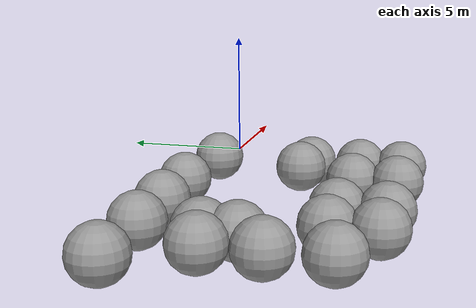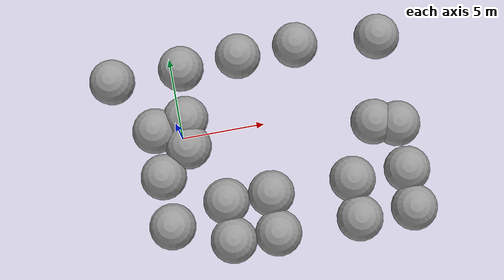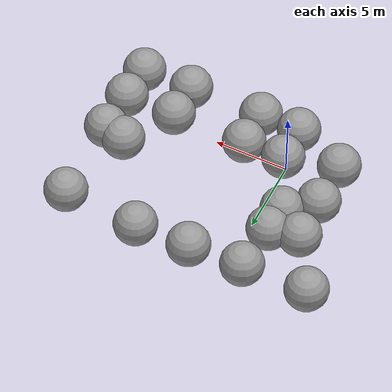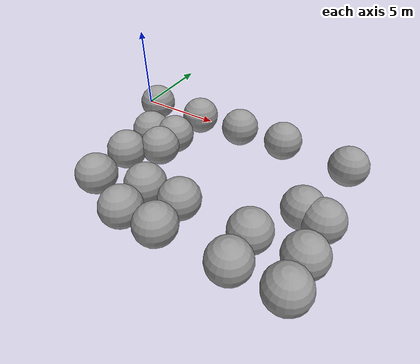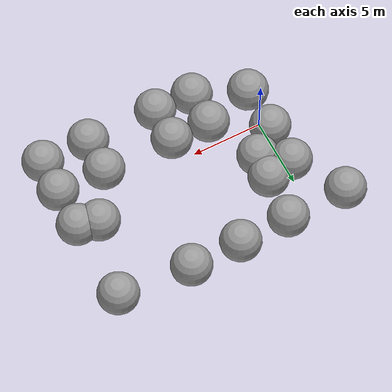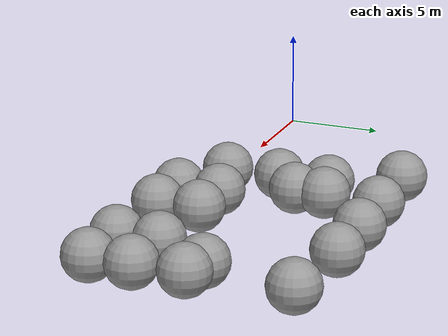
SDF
<sdf version="1.7">
 <world name="default">
  <model name="fly_spawn_18">
   <link name="link_0">
    <inertial>
     <mass>1</mass>
     <inertia><ixx>0.1</ixx><ixy>0</ixy><ixz>0</ixz><iyy>0.1</iyy><iyz>0</iyz><izz>0.1</izz></inertia>
     <pose>0 0 -2.0 0 -0 0</pose>
    </inertial>
    <visual name="visual">
     <pose>0 0 -2.0 0 -0 0</pose>
     <geometry><sphere><radius>1.5</radius></sphere></geometry>
     <material>
      <lighting>1</lighting>
      <script><uri>file://media/materials/scripts/gazebo.material</uri><name>Gazebo/Grey</name></script>
      <shader type="pixel"><normal_map>__default__</normal_map></shader>
      <ambient>0.3 0.3 0.3 1</ambient>
      <diffuse>0.7 0.7 0.7 1</diffuse>
      <specular>0.01 0.01 0.01 1</specular>
      <emissive>0 0 0 1</emissive>
     </material>
    </visual>
    <collision name="collision">
     <pose>0 0 -2.0 0 -0 0</pose>
     <geometry><sphere><radius>1.5</radius></sphere></geometry>
     <surface>
      <friction>
       <ode><mu>1</mu><mu2>1</mu2><fdir1>0 0 0</fdir1><slip1>0</slip1><slip2>0</slip2></ode>
       <torsional>
        <coefficient>1</coefficient>
        <patch_radius>0</patch_radius>
        <surface_radius>0</surface_radius>
        <use_patch_radius>1</use_patch_radius>
        <ode><slip>0</slip></ode>
       </torsional>
      </friction>
      <bounce><restitution_coefficient>0</restitution_coefficient><threshold>1e+06</threshold></bounce>
      <contact>
       <collide_without_contact>0</collide_without_contact>
       <collide_without_contact_bitmask>1</collide_without_contact_bitmask>
       <collide_bitmask>1</collide_bitmask>
       <ode>
        <soft_cfm>0</soft_cfm>
        <soft_erp>0.2</soft_erp>
        <kp>1e+13</kp>
        <kd>1</kd>
        <max_vel>0.01</max_vel>
        <min_depth>0</min_depth>
       </ode>
       <bullet>
        <split_impulse>1</split_impulse>
        <split_impulse_penetration_threshold>-0.01</split_impulse_penetration_threshold>
        <soft_cfm>0</soft_cfm>
        <soft_erp>0.2</soft_erp>
        <kp>1e+13</kp>
        <kd>1</kd>
       </bullet>
      </contact>
     </surface>
    </collision>
   </link>
   <static>1</static>
   <pose>-4.10298 5.29232 -2.0 0 -0 0</pose>
  </model>
  <model name="fly_spawn_19">
   <link name="link_0">
    <inertial>
     <mass>1</mass>
     <inertia><ixx>0.1</ixx><ixy>0</ixy><ixz>0</ixz><iyy>0.1</iyy><iyz>0</iyz><izz>0.1</izz></inertia>
     <pose>0 0 -2.0 0 -0 0</pose>
    </inertial>
    <visual name="visual">
     <pose>0 0 -2.0 0 -0 0</pose>
     <geometry><sphere><radius>1.5</radius></sphere></geometry>
     <material>
      <lighting>1</lighting>
      <script><uri>file://media/materials/scripts/gazebo.material</uri><name>Gazebo/Grey</name></script>
      <shader type="pixel"><normal_map>__default__</normal_map></shader>
      <ambient>0.3 0.3 0.3 1</ambient>
      <diffuse>0.7 0.7 0.7 1</diffuse>
      <specular>0.01 0.01 0.01 1</specular>
      <emissive>0 0 0 1</emissive>
     </material>
    </visual>
    <collision name="collision">
     <pose>0 0 -2.0 0 -0 0</pose>
     <geometry><sphere><radius>1.5</radius></sphere></geometry>
     <surface>
      <friction>
       <ode><mu>1</mu><mu2>1</mu2><fdir1>0 0 0</fdir1><slip1>0</slip1><slip2>0</slip2></ode>
       <torsional>
        <coefficient>1</coefficient>
        <patch_radius>0</patch_radius>
        <surface_radius>0</surface_radius>
        <use_patch_radius>1</use_patch_radius>
        <ode><slip>0</slip></ode>
       </torsional>
      </friction>
      <bounce><restitution_coefficient>0</restitution_coefficient><threshold>1e+06</threshold></bounce>
      <contact>
       <collide_without_contact>0</collide_without_contact>
       <collide_without_contact_bitmask>1</collide_without_contact_bitmask>
       <collide_bitmask>1</collide_bitmask>
       <ode>
        <soft_cfm>0</soft_cfm>
        <soft_erp>0.2</soft_erp>
        <kp>1e+13</kp>
        <kd>1</kd>
        <max_vel>0.01</max_vel>
        <min_depth>0</min_depth>
       </ode>
       <bullet>
        <split_impulse>1</split_impulse>
        <split_impulse_penetration_threshold>-0.01</split_impulse_penetration_threshold>
        <soft_cfm>0</soft_cfm>
        <soft_erp>0.2</soft_erp>
        <kp>1e+13</kp>
        <kd>1</kd>
       </bullet>
      </contact>
     </surface>
    </collision>
   </link>
   <static>1</static>
   <pose>-1.85276 1.57176 -2.0 0 -0 0</pose>
  </model>
  <model name="fly_spawn_20">
   <link name="link_0">
    <inertial>
     <mass>1</mass>
     <inertia><ixx>0.1</ixx><ixy>0</ixy><ixz>0</ixz><iyy>0.1</iyy><iyz>0</iyz><izz>0.1</izz></inertia>
     <pose>0 0 -2.0 0 -0 0</pose>
    </inertial>
    <visual name="visual">
     <pose>0 0 -2.0 0 -0 0</pose>
     <geometry><sphere><radius>1.5</radius></sphere></geometry>
     <material>
      <lighting>1</lighting>
      <script><uri>file://media/materials/scripts/gazebo.material</uri><name>Gazebo/Grey</name></script>
      <shader type="pixel"><normal_map>__default__</normal_map></shader>
      <ambient>0.3 0.3 0.3 1</ambient>
      <diffuse>0.7 0.7 0.7 1</diffuse>
      <specular>0.01 0.01 0.01 1</specular>
      <emissive>0 0 0 1</emissive>
     </material>
    </visual>
    <collision name="collision">
     <pose>0 0 -2.0 0 -0 0</pose>
     <geometry><sphere><radius>1.5</radius></sphere></geometry>
     <surface>
      <friction>
       <ode><mu>1</mu><mu2>1</mu2><fdir1>0 0 0</fdir1><slip1>0</slip1><slip2>0</slip2></ode>
       <torsional>
        <coefficient>1</coefficient>
        <patch_radius>0</patch_radius>
        <surface_radius>0</surface_radius>
        <use_patch_radius>1</use_patch_radius>
        <ode><slip>0</slip></ode>
       </torsional>
      </friction>
      <bounce><restitution_coefficient>0</restitution_coefficient><threshold>1e+06</threshold></bounce>
      <contact>
       <collide_without_contact>0</collide_without_contact>
       <collide_without_contact_bitmask>1</collide_without_contact_bitmask>
       <collide_bitmask>1</collide_bitmask>
       <ode>
        <soft_cfm>0</soft_cfm>
        <soft_erp>0.2</soft_erp>
        <kp>1e+13</kp>
        <kd>1</kd>
        <max_vel>0.01</max_vel>
        <min_depth>0</min_depth>
       </ode>
       <bullet>
        <split_impulse>1</split_impulse>
        <split_impulse_penetration_threshold>-0.01</split_impulse_penetration_threshold>
        <soft_cfm>0</soft_cfm>
        <soft_erp>0.2</soft_erp>
        <kp>1e+13</kp>
        <kd>1</kd>
       </bullet>
      </contact>
     </surface>
    </collision>
   </link>
   <static>1</static>
   <pose>-1.81387 -1.48904 -2.0 0 -0 0</pose>
  </model>
  <model name="fly_spawn_21">
   <link name="link_0">
    <inertial>
     <mass>1</mass>
     <inertia><ixx>0.1</ixx><ixy>0</ixy><ixz>0</ixz><iyy>0.1</iyy><iyz>0</iyz><izz>0.1</izz></inertia>
     <pose>0 0 -2.0 0 -0 0</pose>
    </inertial>
    <visual name="visual">
     <pose>0 0 -2.0 0 -0 0</pose>
     <geometry><sphere><radius>1.5</radius></sphere></geometry>
     <material>
      <lighting>1</lighting>
      <script><uri>file://media/materials/scripts/gazebo.material</uri><name>Gazebo/Grey</name></script>
      <shader type="pixel"><normal_map>__default__</normal_map></shader>
      <ambient>0.3 0.3 0.3 1</ambient>
      <diffuse>0.7 0.7 0.7 1</diffuse>
      <specular>0.01 0.01 0.01 1</specular>
      <emissive>0 0 0 1</emissive>
     </material>
    </visual>
    <collision name="collision">
     <pose>0 0 -2.0 0 -0 0</pose>
     <geometry><sphere><radius>1.5</radius></sphere></geometry>
     <surface>
      <friction>
       <ode><mu>1</mu><mu2>1</mu2><fdir1>0 0 0</fdir1><slip1>0</slip1><slip2>0</slip2></ode>
       <torsional>
        <coefficient>1</coefficient>
        <patch_radius>0</patch_radius>
        <surface_radius>0</surface_radius>
        <use_patch_radius>1</use_patch_radius>
        <ode><slip>0</slip></ode>
       </torsional>
      </friction>
      <bounce><restitution_coefficient>0</restitution_coefficient><threshold>1e+06</threshold></bounce>
      <contact>
       <collide_without_contact>0</collide_without_contact>
       <collide_without_contact_bitmask>1</collide_without_contact_bitmask>
       <collide_bitmask>1</collide_bitmask>
       <ode>
        <soft_cfm>0</soft_cfm>
        <soft_erp>0.2</soft_erp>
        <kp>1e+13</kp>
        <kd>1</kd>
        <max_vel>0.01</max_vel>
        <min_depth>0</min_depth>
       </ode>
       <bullet>
        <split_impulse>1</split_impulse>
        <split_impulse_penetration_threshold>-0.01</split_impulse_penetration_threshold>
        <soft_cfm>0</soft_cfm>
        <soft_erp>0.2</soft_erp>
        <kp>1e+13</kp>
        <kd>1</kd>
       </bullet>
      </contact>
     </surface>
    </collision>
   </link>
   <static>1</static>
   <pose>-1.77766 -4.74982 -2.0 0 -0 0</pose>
  </model>
  <model name="fly_spawn_22">
   <link name="link_0">
    <inertial>
     <mass>1</mass>
     <inertia><ixx>0.1</ixx><ixy>0</ixy><ixz>0</ixz><iyy>0.1</iyy><iyz>0</iyz><izz>0.1</izz></inertia>
     <pose>0 0 -2.0 0 -0 0</pose>
    </inertial>
    <visual name="visual">
     <pose>0 0 -2.0 0 -0 0</pose>
     <geometry><sphere><radius>1.5</radius></sphere></geometry>
     <material>
      <lighting>1</lighting>
      <script><uri>file://media/materials/scripts/gazebo.material</uri><name>Gazebo/Grey</name></script>
      <shader type="pixel"><normal_map>__default__</normal_map></shader>
      <ambient>0.3 0.3 0.3 1</ambient>
      <diffuse>0.7 0.7 0.7 1</diffuse>
      <specular>0.01 0.01 0.01 1</specular>
      <emissive>0 0 0 1</emissive>
     </material>
    </visual>
    <collision name="collision">
     <pose>0 0 -2.0 0 -0 0</pose>
     <geometry><sphere><radius>1.5</radius></sphere></geometry>
     <surface>
      <friction>
       <ode><mu>1</mu><mu2>1</mu2><fdir1>0 0 0</fdir1><slip1>0</slip1><slip2>0</slip2></ode>
       <torsional>
        <coefficient>1</coefficient>
        <patch_radius>0</patch_radius>
        <surface_radius>0</surface_radius>
        <use_patch_radius>1</use_patch_radius>
        <ode><slip>0</slip></ode>
       </torsional>
      </friction>
      <bounce><restitution_coefficient>0</restitution_coefficient><threshold>1e+06</threshold></bounce>
      <contact>
       <collide_without_contact>0</collide_without_contact>
       <collide_without_contact_bitmask>1</collide_without_contact_bitmask>
       <collide_bitmask>1</collide_bitmask>
       <ode>
        <soft_cfm>0</soft_cfm>
        <soft_erp>0.2</soft_erp>
        <kp>1e+13</kp>
        <kd>1</kd>
        <max_vel>0.01</max_vel>
        <min_depth>0</min_depth>
       </ode>
       <bullet>
        <split_impulse>1</split_impulse>
        <split_impulse_penetration_threshold>-0.01</split_impulse_penetration_threshold>
        <soft_cfm>0</soft_cfm>
        <soft_erp>0.2</soft_erp>
        <kp>1e+13</kp>
        <kd>1</kd>
       </bullet>
      </contact>
     </surface>
    </collision>
   </link>
   <static>1</static>
   <pose>0.088654 0.175545 -2.0 0 -0 0</pose>
  </model>
  <model name="fly_spawn_23">
   <link name="link_0">
    <inertial>
     <mass>1</mass>
     <inertia><ixx>0.1</ixx><ixy>0</ixy><ixz>0</ixz><iyy>0.1</iyy><iyz>0</iyz><izz>0.1</izz></inertia>
     <pose>0 0 -2.0 0 -0 0</pose>
    </inertial>
    <visual name="visual">
     <pose>0 0 -2.0 0 -0 0</pose>
     <geometry><sphere><radius>1.5</radius></sphere></geometry>
     <material>
      <lighting>1</lighting>
      <script><uri>file://media/materials/scripts/gazebo.material</uri><name>Gazebo/Grey</name></script>
      <shader type="pixel"><normal_map>__default__</normal_map></shader>
      <ambient>0.3 0.3 0.3 1</ambient>
      <diffuse>0.7 0.7 0.7 1</diffuse>
      <specular>0.01 0.01 0.01 1</specular>
      <emissive>0 0 0 1</emissive>
     </material>
    </visual>
    <collision name="collision">
     <pose>0 0 -2.0 0 -0 0</pose>
     <geometry><sphere><radius>1.5</radius></sphere></geometry>
     <surface>
      <friction>
       <ode><mu>1</mu><mu2>1</mu2><fdir1>0 0 0</fdir1><slip1>0</slip1><slip2>0</slip2></ode>
       <torsional>
        <coefficient>1</coefficient>
        <patch_radius>0</patch_radius>
        <surface_radius>0</surface_radius>
        <use_patch_radius>1</use_patch_radius>
        <ode><slip>0</slip></ode>
       </torsional>
      </friction>
      <bounce><restitution_coefficient>0</restitution_coefficient><threshold>1e+06</threshold></bounce>
      <contact>
       <collide_without_contact>0</collide_without_contact>
       <collide_without_contact_bitmask>1</collide_without_contact_bitmask>
       <collide_bitmask>1</collide_bitmask>
       <ode>
        <soft_cfm>0</soft_cfm>
        <soft_erp>0.2</soft_erp>
        <kp>1e+13</kp>
        <kd>1</kd>
        <max_vel>0.01</max_vel>
        <min_depth>0</min_depth>
       </ode>
       <bullet>
        <split_impulse>1</split_impulse>
        <split_impulse_penetration_threshold>-0.01</split_impulse_penetration_threshold>
        <soft_cfm>0</soft_cfm>
        <soft_erp>0.2</soft_erp>
        <kp>1e+13</kp>
        <kd>1</kd>
       </bullet>
      </contact>
     </surface>
    </collision>
   </link>
   <static>1</static>
   <pose>0.193497 2.0243 -2.0 0 -0 0</pose>
  </model>
  <model name="fly_spawn_24">
   <link name="link_0">
    <inertial>
     <mass>1</mass>
     <inertia><ixx>0.1</ixx><ixy>0</ixy><ixz>0</ixz><iyy>0.1</iyy><iyz>0</iyz><izz>0.1</izz></inertia>
     <pose>0 0 -2.0 0 -0 0</pose>
    </inertial>
    <visual name="visual">
     <pose>0 0 -2.0 0 -0 0</pose>
     <geometry><sphere><radius>1.5</radius></sphere></geometry>
     <material>
      <lighting>1</lighting>
      <script><uri>file://media/materials/scripts/gazebo.material</uri><name>Gazebo/Grey</name></script>
      <shader type="pixel"><normal_map>__default__</normal_map></shader>
      <ambient>0.3 0.3 0.3 1</ambient>
      <diffuse>0.7 0.7 0.7 1</diffuse>
      <specular>0.01 0.01 0.01 1</specular>
      <emissive>0 0 0 1</emissive>
     </material>
    </visual>
    <collision name="collision">
     <pose>0 0 -2.0 0 -0 0</pose>
     <geometry><sphere><radius>1.5</radius></sphere></geometry>
     <surface>
      <friction>
       <ode><mu>1</mu><mu2>1</mu2><fdir1>0 0 0</fdir1><slip1>0</slip1><slip2>0</slip2></ode>
       <torsional>
        <coefficient>1</coefficient>
        <patch_radius>0</patch_radius>
        <surface_radius>0</surface_radius>
        <use_patch_radius>1</use_patch_radius>
        <ode><slip>0</slip></ode>
       </torsional>
      </friction>
      <bounce><restitution_coefficient>0</restitution_coefficient><threshold>1e+06</threshold></bounce>
      <contact>
       <collide_without_contact>0</collide_without_contact>
       <collide_without_contact_bitmask>1</collide_without_contact_bitmask>
       <collide_bitmask>1</collide_bitmask>
       <ode>
        <soft_cfm>0</soft_cfm>
        <soft_erp>0.2</soft_erp>
        <kp>1e+13</kp>
        <kd>1</kd>
        <max_vel>0.01</max_vel>
        <min_depth>0</min_depth>
       </ode>
       <bullet>
        <split_impulse>1</split_impulse>
        <split_impulse_penetration_threshold>-0.01</split_impulse_penetration_threshold>
        <soft_cfm>0</soft_cfm>
        <soft_erp>0.2</soft_erp>
        <kp>1e+13</kp>
        <kd>1</kd>
       </bullet>
      </contact>
     </surface>
    </collision>
   </link>
   <static>1</static>
   <pose>0.468475 5.37091 -2.0 0 -0 0</pose>
  </model>
  <model name="fly_spawn_25">
   <link name="link_0">
    <inertial>
     <mass>1</mass>
     <inertia><ixx>0.1</ixx><ixy>0</ixy><ixz>0</ixz><iyy>0.1</iyy><iyz>0</iyz><izz>0.1</izz></inertia>
     <pose>0 0 -2.0 0 -0 0</pose>
    </inertial>
    <visual name="visual">
     <pose>0 0 -2.0 0 -0 0</pose>
     <geometry><sphere><radius>1.5</radius></sphere></geometry>
     <material>
      <lighting>1</lighting>
      <script><uri>file://media/materials/scripts/gazebo.material</uri><name>Gazebo/Grey</name></script>
      <shader type="pixel"><normal_map>__default__</normal_map></shader>
      <ambient>0.3 0.3 0.3 1</ambient>
      <diffuse>0.7 0.7 0.7 1</diffuse>
      <specular>0.01 0.01 0.01 1</specular>
      <emissive>0 0 0 1</emissive>
     </material>
    </visual>
    <collision name="collision">
     <pose>0 0 -2.0 0 -0 0</pose>
     <geometry><sphere><radius>1.5</radius></sphere></geometry>
     <surface>
      <friction>
       <ode><mu>1</mu><mu2>1</mu2><fdir1>0 0 0</fdir1><slip1>0</slip1><slip2>0</slip2></ode>
       <torsional>
        <coefficient>1</coefficient>
        <patch_radius>0</patch_radius>
        <surface_radius>0</surface_radius>
        <use_patch_radius>1</use_patch_radius>
        <ode><slip>0</slip></ode>
       </torsional>
      </friction>
      <bounce><restitution_coefficient>0</restitution_coefficient><threshold>1e+06</threshold></bounce>
      <contact>
       <collide_without_contact>0</collide_without_contact>
       <collide_without_contact_bitmask>1</collide_without_contact_bitmask>
       <collide_bitmask>1</collide_bitmask>
       <ode>
        <soft_cfm>0</soft_cfm>
        <soft_erp>0.2</soft_erp>
        <kp>1e+13</kp>
        <kd>1</kd>
        <max_vel>0.01</max_vel>
        <min_depth>0</min_depth>
       </ode>
       <bullet>
        <split_impulse>1</split_impulse>
        <split_impulse_penetration_threshold>-0.01</split_impulse_penetration_threshold>
        <soft_cfm>0</soft_cfm>
        <soft_erp>0.2</soft_erp>
        <kp>1e+13</kp>
        <kd>1</kd>
       </bullet>
      </contact>
     </surface>
    </collision>
   </link>
   <static>1</static>
   <pose>1.88752 -3.76607 -2.0 0 -0 0</pose>
  </model>
  <model name="fly_spawn_26">
   <link name="link_0">
    <inertial>
     <mass>1</mass>
     <inertia><ixx>0.1</ixx><ixy>0</ixy><ixz>0</ixz><iyy>0.1</iyy><iyz>0</iyz><izz>0.1</izz></inertia>
     <pose>0 0 -2.0 0 -0 0</pose>
    </inertial>
    <visual name="visual">
     <pose>0 0 -2.0 0 -0 0</pose>
     <geometry><sphere><radius>1.5</radius></sphere></geometry>
     <material>
      <lighting>1</lighting>
      <script><uri>file://media/materials/scripts/gazebo.material</uri><name>Gazebo/Grey</name></script>
      <shader type="pixel"><normal_map>__default__</normal_map></shader>
      <ambient>0.3 0.3 0.3 1</ambient>
      <diffuse>0.7 0.7 0.7 1</diffuse>
      <specular>0.01 0.01 0.01 1</specular>
      <emissive>0 0 0 1</emissive>
     </material>
    </visual>
    <collision name="collision">
     <pose>0 0 -2.0 0 -0 0</pose>
     <geometry><sphere><radius>1.5</radius></sphere></geometry>
     <surface>
      <friction>
       <ode><mu>1</mu><mu2>1</mu2><fdir1>0 0 0</fdir1><slip1>0</slip1><slip2>0</slip2></ode>
       <torsional>
        <coefficient>1</coefficient>
        <patch_radius>0</patch_radius>
        <surface_radius>0</surface_radius>
        <use_patch_radius>1</use_patch_radius>
        <ode><slip>0</slip></ode>
       </torsional>
      </friction>
      <bounce><restitution_coefficient>0</restitution_coefficient><threshold>1e+06</threshold></bounce>
      <contact>
       <collide_without_contact>0</collide_without_contact>
       <collide_without_contact_bitmask>1</collide_without_contact_bitmask>
       <collide_bitmask>1</collide_bitmask>
       <ode>
        <soft_cfm>0</soft_cfm>
        <soft_erp>0.2</soft_erp>
        <kp>1e+13</kp>
        <kd>1</kd>
        <max_vel>0.01</max_vel>
        <min_depth>0</min_depth>
       </ode>
       <bullet>
        <split_impulse>1</split_impulse>
        <split_impulse_penetration_threshold>-0.01</split_impulse_penetration_threshold>
        <soft_cfm>0</soft_cfm>
        <soft_erp>0.2</soft_erp>
        <kp>1e+13</kp>
        <kd>1</kd>
       </bullet>
      </contact>
     </surface>
    </collision>
   </link>
   <static>1</static>
   <pose>1.9196 -6.31185 -2.0 0 -0 0</pose>
  </model>
  <model name="fly_spawn_27">
   <link name="link_0">
    <inertial>
     <mass>1</mass>
     <inertia><ixx>0.1</ixx><ixy>0</ixy><ixz>0</ixz><iyy>0.1</iyy><iyz>0</iyz><izz>0.1</izz></inertia>
     <pose>0 0 -2.0 0 -0 0</pose>
    </inertial>
    <visual name="visual">
     <pose>0 0 -2.0 0 -0 0</pose>
     <geometry><sphere><radius>1.5</radius></sphere></geometry>
     <material>
      <lighting>1</lighting>
      <script><uri>file://media/materials/scripts/gazebo.material</uri><name>Gazebo/Grey</name></script>
      <shader type="pixel"><normal_map>__default__</normal_map></shader>
      <ambient>0.3 0.3 0.3 1</ambient>
      <diffuse>0.7 0.7 0.7 1</diffuse>
      <specular>0.01 0.01 0.01 1</specular>
      <emissive>0 0 0 1</emissive>
     </material>
    </visual>
    <collision name="collision">
     <pose>0 0 -2.0 0 -0 0</pose>
     <geometry><sphere><radius>1.5</radius></sphere></geometry>
     <surface>
      <friction>
       <ode><mu>1</mu><mu2>1</mu2><fdir1>0 0 0</fdir1><slip1>0</slip1><slip2>0</slip2></ode>
       <torsional>
        <coefficient>1</coefficient>
        <patch_radius>0</patch_radius>
        <surface_radius>0</surface_radius>
        <use_patch_radius>1</use_patch_radius>
        <ode><slip>0</slip></ode>
       </torsional>
      </friction>
      <bounce><restitution_coefficient>0</restitution_coefficient><threshold>1e+06</threshold></bounce>
      <contact>
       <collide_without_contact>0</collide_without_contact>
       <collide_without_contact_bitmask>1</collide_without_contact_bitmask>
       <collide_bitmask>1</collide_bitmask>
       <ode>
        <soft_cfm>0</soft_cfm>
        <soft_erp>0.2</soft_erp>
        <kp>1e+13</kp>
        <kd>1</kd>
        <max_vel>0.01</max_vel>
        <min_depth>0</min_depth>
       </ode>
       <bullet>
        <split_impulse>1</split_impulse>
        <split_impulse_penetration_threshold>-0.01</split_impulse_penetration_threshold>
        <soft_cfm>0</soft_cfm>
        <soft_erp>0.2</soft_erp>
        <kp>1e+13</kp>
        <kd>1</kd>
       </bullet>
      </contact>
     </surface>
    </collision>
   </link>
   <static>1</static>
   <pose>4.79828 -6.367 -2.0 0 -0 0</pose>
  </model>
  <model name="fly_spawn_28">
   <link name="link_0">
    <inertial>
     <mass>1</mass>
     <inertia><ixx>0.1</ixx><ixy>0</ixy><ixz>0</ixz><iyy>0.1</iyy><iyz>0</iyz><izz>0.1</izz></inertia>
     <pose>0 0 -2.0 0 -0 0</pose>
    </inertial>
    <visual name="visual">
     <pose>0 0 -2.0 0 -0 0</pose>
     <geometry><sphere><radius>1.5</radius></sphere></geometry>
     <material>
      <lighting>1</lighting>
      <script><uri>file://media/materials/scripts/gazebo.material</uri><name>Gazebo/Grey</name></script>
      <shader type="pixel"><normal_map>__default__</normal_map></shader>
      <ambient>0.3 0.3 0.3 1</ambient>
      <diffuse>0.7 0.7 0.7 1</diffuse>
      <specular>0.01 0.01 0.01 1</specular>
      <emissive>0 0 0 1</emissive>
     </material>
    </visual>
    <collision name="collision">
     <pose>0 0 -2.0 0 -0 0</pose>
     <geometry><sphere><radius>1.5</radius></sphere></geometry>
     <surface>
      <friction>
       <ode><mu>1</mu><mu2>1</mu2><fdir1>0 0 0</fdir1><slip1>0</slip1><slip2>0</slip2></ode>
       <torsional>
        <coefficient>1</coefficient>
        <patch_radius>0</patch_radius>
        <surface_radius>0</surface_radius>
        <use_patch_radius>1</use_patch_radius>
        <ode><slip>0</slip></ode>
       </torsional>
      </friction>
      <bounce><restitution_coefficient>0</restitution_coefficient><threshold>1e+06</threshold></bounce>
      <contact>
       <collide_without_contact>0</collide_without_contact>
       <collide_without_contact_bitmask>1</collide_without_contact_bitmask>
       <collide_bitmask>1</collide_bitmask>
       <ode>
        <soft_cfm>0</soft_cfm>
        <soft_erp>0.2</soft_erp>
        <kp>1e+13</kp>
        <kd>1</kd>
        <max_vel>0.01</max_vel>
        <min_depth>0</min_depth>
       </ode>
       <bullet>
        <split_impulse>1</split_impulse>
        <split_impulse_penetration_threshold>-0.01</split_impulse_penetration_threshold>
        <soft_cfm>0</soft_cfm>
        <soft_erp>0.2</soft_erp>
        <kp>1e+13</kp>
        <kd>1</kd>
       </bullet>
      </contact>
     </surface>
    </collision>
   </link>
   <static>1</static>
   <pose>4.80378 -3.78707 -2.0 0 -0 0</pose>
  </model>
  <model name="fly_spawn_29">
   <link name="link_0">
    <inertial>
     <mass>1</mass>
     <inertia><ixx>0.1</ixx><ixy>0</ixy><ixz>0</ixz><iyy>0.1</iyy><iyz>0</iyz><izz>0.1</izz></inertia>
     <pose>0 0 -2.0 0 -0 0</pose>
    </inertial>
    <visual name="visual">
     <pose>0 0 -2.0 0 -0 0</pose>
     <geometry><sphere><radius>1.5</radius></sphere></geometry>
     <material>
      <lighting>1</lighting>
      <script><uri>file://media/materials/scripts/gazebo.material</uri><name>Gazebo/Grey</name></script>
      <shader type="pixel"><normal_map>__default__</normal_map></shader>
      <ambient>0.3 0.3 0.3 1</ambient>
      <diffuse>0.7 0.7 0.7 1</diffuse>
      <specular>0.01 0.01 0.01 1</specular>
      <emissive>0 0 0 1</emissive>
     </material>
    </visual>
    <collision name="collision">
     <pose>0 0 -2.0 0 -0 0</pose>
     <geometry><sphere><radius>1.5</radius></sphere></geometry>
     <surface>
      <friction>
       <ode><mu>1</mu><mu2>1</mu2><fdir1>0 0 0</fdir1><slip1>0</slip1><slip2>0</slip2></ode>
       <torsional>
        <coefficient>1</coefficient>
        <patch_radius>0</patch_radius>
        <surface_radius>0</surface_radius>
        <use_patch_radius>1</use_patch_radius>
        <ode><slip>0</slip></ode>
       </torsional>
      </friction>
      <bounce><restitution_coefficient>0</restitution_coefficient><threshold>1e+06</threshold></bounce>
      <contact>
       <collide_without_contact>0</collide_without_contact>
       <collide_without_contact_bitmask>1</collide_without_contact_bitmask>
       <collide_bitmask>1</collide_bitmask>
       <ode>
        <soft_cfm>0</soft_cfm>
        <soft_erp>0.2</soft_erp>
        <kp>1e+13</kp>
        <kd>1</kd>
        <max_vel>0.01</max_vel>
        <min_depth>0</min_depth>
       </ode>
       <bullet>
        <split_impulse>1</split_impulse>
        <split_impulse_penetration_threshold>-0.01</split_impulse_penetration_threshold>
        <soft_cfm>0</soft_cfm>
        <soft_erp>0.2</soft_erp>
        <kp>1e+13</kp>
        <kd>1</kd>
       </bullet>
      </contact>
     </surface>
    </collision>
   </link>
   <static>1</static>
   <pose>4.28392 5.53083 -2.0 0 -0 0</pose>
  </model>
  <model name="fly_spawn_30">
   <link name="link_0">
    <inertial>
     <mass>1</mass>
     <inertia><ixx>0.1</ixx><ixy>0</ixy><ixz>0</ixz><iyy>0.1</iyy><iyz>0</iyz><izz>0.1</izz></inertia>
     <pose>0 0 -2.0 0 -0 0</pose>
    </inertial>
    <visual name="visual">
     <pose>0 0 -2.0 0 -0 0</pose>
     <geometry><sphere><radius>1.5</radius></sphere></geometry>
     <material>
      <lighting>1</lighting>
      <script><uri>file://media/materials/scripts/gazebo.material</uri><name>Gazebo/Grey</name></script>
      <shader type="pixel"><normal_map>__default__</normal_map></shader>
      <ambient>0.3 0.3 0.3 1</ambient>
      <diffuse>0.7 0.7 0.7 1</diffuse>
      <specular>0.01 0.01 0.01 1</specular>
      <emissive>0 0 0 1</emissive>
     </material>
    </visual>
    <collision name="collision">
     <pose>0 0 -2.0 0 -0 0</pose>
     <geometry><sphere><radius>1.5</radius></sphere></geometry>
     <surface>
      <friction>
       <ode><mu>1</mu><mu2>1</mu2><fdir1>0 0 0</fdir1><slip1>0</slip1><slip2>0</slip2></ode>
       <torsional>
        <coefficient>1</coefficient>
        <patch_radius>0</patch_radius>
        <surface_radius>0</surface_radius>
        <use_patch_radius>1</use_patch_radius>
        <ode><slip>0</slip></ode>
       </torsional>
      </friction>
      <bounce><restitution_coefficient>0</restitution_coefficient><threshold>1e+06</threshold></bounce>
      <contact>
       <collide_without_contact>0</collide_without_contact>
       <collide_without_contact_bitmask>1</collide_without_contact_bitmask>
       <collide_bitmask>1</collide_bitmask>
       <ode>
        <soft_cfm>0</soft_cfm>
        <soft_erp>0.2</soft_erp>
        <kp>1e+13</kp>
        <kd>1</kd>
        <max_vel>0.01</max_vel>
        <min_depth>0</min_depth>
       </ode>
       <bullet>
        <split_impulse>1</split_impulse>
        <split_impulse_penetration_threshold>-0.01</split_impulse_penetration_threshold>
        <soft_cfm>0</soft_cfm>
        <soft_erp>0.2</soft_erp>
        <kp>1e+13</kp>
        <kd>1</kd>
       </bullet>
      </contact>
     </surface>
    </collision>
   </link>
   <static>1</static>
   <pose>8.13292 5.59507 -2.0 0 -0 0</pose>
  </model>
  <model name="fly_spawn_31">
   <link name="link_0">
    <inertial>
     <mass>1</mass>
     <inertia><ixx>0.1</ixx><ixy>0</ixy><ixz>0</ixz><iyy>0.1</iyy><iyz>0</iyz><izz>0.1</izz></inertia>
     <pose>0 0 -2.0 0 -0 0</pose>
    </inertial>
    <visual name="visual">
     <pose>0 0 -2.0 0 -0 0</pose>
     <geometry><sphere><radius>1.5</radius></sphere></geometry>
     <material>
      <lighting>1</lighting>
      <script><uri>file://media/materials/scripts/gazebo.material</uri><name>Gazebo/Grey</name></script>
      <shader type="pixel"><normal_map>__default__</normal_map></shader>
      <ambient>0.3 0.3 0.3 1</ambient>
      <diffuse>0.7 0.7 0.7 1</diffuse>
      <specular>0.01 0.01 0.01 1</specular>
      <emissive>0 0 0 1</emissive>
     </material>
    </visual>
    <collision name="collision">
     <pose>0 0 -2.0 0 -0 0</pose>
     <geometry><sphere><radius>1.5</radius></sphere></geometry>
     <surface>
      <friction>
       <ode><mu>1</mu><mu2>1</mu2><fdir1>0 0 0</fdir1><slip1>0</slip1><slip2>0</slip2></ode>
       <torsional>
        <coefficient>1</coefficient>
        <patch_radius>0</patch_radius>
        <surface_radius>0</surface_radius>
        <use_patch_radius>1</use_patch_radius>
        <ode><slip>0</slip></ode>
       </torsional>
      </friction>
      <bounce><restitution_coefficient>0</restitution_coefficient><threshold>1e+06</threshold></bounce>
      <contact>
       <collide_without_contact>0</collide_without_contact>
       <collide_without_contact_bitmask>1</collide_without_contact_bitmask>
       <collide_bitmask>1</collide_bitmask>
       <ode>
        <soft_cfm>0</soft_cfm>
        <soft_erp>0.2</soft_erp>
        <kp>1e+13</kp>
        <kd>1</kd>
        <max_vel>0.01</max_vel>
        <min_depth>0</min_depth>
       </ode>
       <bullet>
        <split_impulse>1</split_impulse>
        <split_impulse_penetration_threshold>-0.01</split_impulse_penetration_threshold>
        <soft_cfm>0</soft_cfm>
        <soft_erp>0.2</soft_erp>
        <kp>1e+13</kp>
        <kd>1</kd>
       </bullet>
      </contact>
     </surface>
    </collision>
   </link>
   <static>1</static>
   <pose>10.0943 -6.37874 -2.0 0 -0 0</pose>
  </model>
  <model name="fly_spawn_32">
   <link name="link_0">
    <inertial>
     <mass>1</mass>
     <inertia><ixx>0.1</ixx><ixy>0</ixy><ixz>0</ixz><iyy>0.1</iyy><iyz>0</iyz><izz>0.1</izz></inertia>
     <pose>0 0 -2.0 0 -0 0</pose>
    </inertial>
    <visual name="visual">
     <pose>0 0 -2.0 0 -0 0</pose>
     <geometry><sphere><radius>1.5</radius></sphere></geometry>
     <material>
      <lighting>1</lighting>
      <script><uri>file://media/materials/scripts/gazebo.material</uri><name>Gazebo/Grey</name></script>
      <shader type="pixel"><normal_map>__default__</normal_map></shader>
      <ambient>0.3 0.3 0.3 1</ambient>
      <diffuse>0.7 0.7 0.7 1</diffuse>
      <specular>0.01 0.01 0.01 1</specular>
      <emissive>0 0 0 1</emissive>
     </material>
    </visual>
    <collision name="collision">
     <pose>0 0 -2.0 0 -0 0</pose>
     <geometry><sphere><radius>1.5</radius></sphere></geometry>
     <surface>
      <friction>
       <ode><mu>1</mu><mu2>1</mu2><fdir1>0 0 0</fdir1><slip1>0</slip1><slip2>0</slip2></ode>
       <torsional>
        <coefficient>1</coefficient>
        <patch_radius>0</patch_radius>
        <surface_radius>0</surface_radius>
        <use_patch_radius>1</use_patch_radius>
        <ode><slip>0</slip></ode>
       </torsional>
      </friction>
      <bounce><restitution_coefficient>0</restitution_coefficient><threshold>1e+06</threshold></bounce>
      <contact>
       <collide_without_contact>0</collide_without_contact>
       <collide_without_contact_bitmask>1</collide_without_contact_bitmask>
       <collide_bitmask>1</collide_bitmask>
       <ode>
        <soft_cfm>0</soft_cfm>
        <soft_erp>0.2</soft_erp>
        <kp>1e+13</kp>
        <kd>1</kd>
        <max_vel>0.01</max_vel>
        <min_depth>0</min_depth>
       </ode>
       <bullet>
        <split_impulse>1</split_impulse>
        <split_impulse_penetration_threshold>-0.01</split_impulse_penetration_threshold>
        <soft_cfm>0</soft_cfm>
        <soft_erp>0.2</soft_erp>
        <kp>1e+13</kp>
        <kd>1</kd>
       </bullet>
      </contact>
     </surface>
    </collision>
   </link>
   <static>1</static>
   <pose>10.1155 -3.82002 -2.0 0 -0 0</pose>
  </model>
  <model name="fly_spawn_33">
   <link name="link_0">
    <inertial>
     <mass>1</mass>
     <inertia><ixx>0.1</ixx><ixy>0</ixy><ixz>0</ixz><iyy>0.1</iyy><iyz>0</iyz><izz>0.1</izz></inertia>
     <pose>0 0 -2.0 0 -0 0</pose>
    </inertial>
    <visual name="visual">
     <pose>0 0 -2.0 0 -0 0</pose>
     <geometry><sphere><radius>1.5</radius></sphere></geometry>
     <material>
      <lighting>1</lighting>
      <script><uri>file://media/materials/scripts/gazebo.material</uri><name>Gazebo/Grey</name></script>
      <shader type="pixel"><normal_map>__default__</normal_map></shader>
      <ambient>0.3 0.3 0.3 1</ambient>
      <diffuse>0.7 0.7 0.7 1</diffuse>
      <specular>0.01 0.01 0.01 1</specular>
      <emissive>0 0 0 1</emissive>
     </material>
    </visual>
    <collision name="collision">
     <pose>0 0 -2.0 0 -0 0</pose>
     <geometry><sphere><radius>1.5</radius></sphere></geometry>
     <surface>
      <friction>
       <ode><mu>1</mu><mu2>1</mu2><fdir1>0 0 0</fdir1><slip1>0</slip1><slip2>0</slip2></ode>
       <torsional>
        <coefficient>1</coefficient>
        <patch_radius>0</patch_radius>
        <surface_radius>0</surface_radius>
        <use_patch_radius>1</use_patch_radius>
        <ode><slip>0</slip></ode>
       </torsional>
      </friction>
      <bounce><restitution_coefficient>0</restitution_coefficient><threshold>1e+06</threshold></bounce>
      <contact>
       <collide_without_contact>0</collide_without_contact>
       <collide_without_contact_bitmask>1</collide_without_contact_bitmask>
       <collide_bitmask>1</collide_bitmask>
       <ode>
        <soft_cfm>0</soft_cfm>
        <soft_erp>0.2</soft_erp>
        <kp>1e+13</kp>
        <kd>1</kd>
        <max_vel>0.01</max_vel>
        <min_depth>0</min_depth>
       </ode>
       <bullet>
        <split_impulse>1</split_impulse>
        <split_impulse_penetration_threshold>-0.01</split_impulse_penetration_threshold>
        <soft_cfm>0</soft_cfm>
        <soft_erp>0.2</soft_erp>
        <kp>1e+13</kp>
        <kd>1</kd>
       </bullet>
      </contact>
     </surface>
    </collision>
   </link>
   <static>1</static>
   <pose>13.6494 -6.33183 -2.0 0 -0 0</pose>
  </model>
  <model name="fly_spawn_34">
   <link name="link_0">
    <inertial>
     <mass>1</mass>
     <inertia><ixx>0.1</ixx><ixy>0</ixy><ixz>0</ixz><iyy>0.1</iyy><iyz>0</iyz><izz>0.1</izz></inertia>
     <pose>0 0 -2.0 0 -0 0</pose>
    </inertial>
    <visual name="visual">
     <pose>0 0 -2.0 0 -0 0</pose>
     <geometry><sphere><radius>1.5</radius></sphere></geometry>
     <material>
      <lighting>1</lighting>
      <script><uri>file://media/materials/scripts/gazebo.material</uri><name>Gazebo/Grey</name></script>
      <shader type="pixel"><normal_map>__default__</normal_map></shader>
      <ambient>0.3 0.3 0.3 1</ambient>
      <diffuse>0.7 0.7 0.7 1</diffuse>
      <specular>0.01 0.01 0.01 1</specular>
      <emissive>0 0 0 1</emissive>
     </material>
    </visual>
    <collision name="collision">
     <pose>0 0 -2.0 0 -0 0</pose>
     <geometry><sphere><radius>1.5</radius></sphere></geometry>
     <surface>
      <friction>
       <ode><mu>1</mu><mu2>1</mu2><fdir1>0 0 0</fdir1><slip1>0</slip1><slip2>0</slip2></ode>
       <torsional>
        <coefficient>1</coefficient>
        <patch_radius>0</patch_radius>
        <surface_radius>0</surface_radius>
        <use_patch_radius>1</use_patch_radius>
        <ode><slip>0</slip></ode>
       </torsional>
      </friction>
      <bounce><restitution_coefficient>0</restitution_coefficient><threshold>1e+06</threshold></bounce>
      <contact>
       <collide_without_contact>0</collide_without_contact>
       <collide_without_contact_bitmask>1</collide_without_contact_bitmask>
       <collide_bitmask>1</collide_bitmask>
       <ode>
        <soft_cfm>0</soft_cfm>
        <soft_erp>0.2</soft_erp>
        <kp>1e+13</kp>
        <kd>1</kd>
        <max_vel>0.01</max_vel>
        <min_depth>0</min_depth>
       </ode>
       <bullet>
        <split_impulse>1</split_impulse>
        <split_impulse_penetration_threshold>-0.01</split_impulse_penetration_threshold>
        <soft_cfm>0</soft_cfm>
        <soft_erp>0.2</soft_erp>
        <kp>1e+13</kp>
        <kd>1</kd>
       </bullet>
      </contact>
     </surface>
    </collision>
   </link>
   <static>1</static>
   <pose>13.6979 -3.81393 -2.0 0 -0 0</pose>
  </model>
  <model name="fly_spawn_35">
   <link name="link_0">
    <inertial>
     <mass>1</mass>
     <inertia><ixx>0.1</ixx><ixy>0</ixy><ixz>0</ixz><iyy>0.1</iyy><iyz>0</iyz><izz>0.1</izz></inertia>
     <pose>0 0 -2.0 0 -0 0</pose>
    </inertial>
    <visual name="visual">
     <pose>0 0 -2.0 0 -0 0</pose>
     <geometry><sphere><radius>1.5</radius></sphere></geometry>
     <material>
      <lighting>1</lighting>
      <script><uri>file://media/materials/scripts/gazebo.material</uri><name>Gazebo/Grey</name></script>
      <shader type="pixel"><normal_map>__default__</normal_map></shader>
      <ambient>0.3 0.3 0.3 1</ambient>
      <diffuse>0.7 0.7 0.7 1</diffuse>
      <specular>0.01 0.01 0.01 1</specular>
      <emissive>0 0 0 1</emissive>
     </material>
    </visual>
    <collision name="collision">
     <pose>0 0 -2.0 0 -0 0</pose>
     <geometry><sphere><radius>1.5</radius></sphere></geometry>
     <surface>
      <friction>
       <ode><mu>1</mu><mu2>1</mu2><fdir1>0 0 0</fdir1><slip1>0</slip1><slip2>0</slip2></ode>
       <torsional>
        <coefficient>1</coefficient>
        <patch_radius>0</patch_radius>
        <surface_radius>0</surface_radius>
        <use_patch_radius>1</use_patch_radius>
        <ode><slip>0</slip></ode>
       </torsional>
      </friction>
      <bounce><restitution_coefficient>0</restitution_coefficient><threshold>1e+06</threshold></bounce>
      <contact>
       <collide_without_contact>0</collide_without_contact>
       <collide_without_contact_bitmask>1</collide_without_contact_bitmask>
       <collide_bitmask>1</collide_bitmask>
       <ode>
        <soft_cfm>0</soft_cfm>
        <soft_erp>0.2</soft_erp>
        <kp>1e+13</kp>
        <kd>1</kd>
        <max_vel>0.01</max_vel>
        <min_depth>0</min_depth>
       </ode>
       <bullet>
        <split_impulse>1</split_impulse>
        <split_impulse_penetration_threshold>-0.01</split_impulse_penetration_threshold>
        <soft_cfm>0</soft_cfm>
        <soft_erp>0.2</soft_erp>
        <kp>1e+13</kp>
        <kd>1</kd>
       </bullet>
      </contact>
     </surface>
    </collision>
   </link>
   <static>1</static>
   <pose>13.5334 5.18111 -2.0 0 -0 0</pose>
  </model>
  <model name="fly_spawn_36">
   <link name="link_0">
    <inertial>
     <mass>1</mass>
     <inertia><ixx>0.1</ixx><ixy>0</ixy><ixz>0</ixz><iyy>0.1</iyy><iyz>0</iyz><izz>0.1</izz></inertia>
     <pose>0 0 -2.0 0 -0 0</pose>
    </inertial>
    <visual name="visual">
     <pose>0 0 -2.0 0 -0 0</pose>
     <geometry><sphere><radius>1.5</radius></sphere></geometry>
     <material>
      <lighting>1</lighting>
      <script><uri>file://media/materials/scripts/gazebo.material</uri><name>Gazebo/Grey</name></script>
      <shader type="pixel"><normal_map>__default__</normal_map></shader>
      <ambient>0.3 0.3 0.3 1</ambient>
      <diffuse>0.7 0.7 0.7 1</diffuse>
      <specular>0.01 0.01 0.01 1</specular>
      <emissive>0 0 0 1</emissive>
     </material>
    </visual>
    <collision name="collision">
     <pose>0 0 -2.0 0 -0 0</pose>
     <geometry><sphere><radius>1.5</radius></sphere></geometry>
     <surface>
      <friction>
       <ode><mu>1</mu><mu2>1</mu2><fdir1>0 0 0</fdir1><slip1>0</slip1><slip2>0</slip2></ode>
       <torsional>
        <coefficient>1</coefficient>
        <patch_radius>0</patch_radius>
        <surface_radius>0</surface_radius>
        <use_patch_radius>1</use_patch_radius>
        <ode><slip>0</slip></ode>
       </torsional>
      </friction>
      <bounce><restitution_coefficient>0</restitution_coefficient><threshold>1e+06</threshold></bounce>
      <contact>
       <collide_without_contact>0</collide_without_contact>
       <collide_without_contact_bitmask>1</collide_without_contact_bitmask>
       <collide_bitmask>1</collide_bitmask>
       <ode>
        <soft_cfm>0</soft_cfm>
        <soft_erp>0.2</soft_erp>
        <kp>1e+13</kp>
        <kd>1</kd>
        <max_vel>0.01</max_vel>
        <min_depth>0</min_depth>
       </ode>
       <bullet>
        <split_impulse>1</split_impulse>
        <split_impulse_penetration_threshold>-0.01</split_impulse_penetration_threshold>
        <soft_cfm>0</soft_cfm>
        <soft_erp>0.2</soft_erp>
        <kp>1e+13</kp>
        <kd>1</kd>
       </bullet>
      </contact>
     </surface>
    </collision>
   </link>
   <static>1</static>
   <pose>13.6915 -0.785446 -2.0 0 -0 0</pose>
  </model>
  <model name="fly_spawn_37">
   <link name="link_0">
    <inertial>
     <mass>1</mass>
     <inertia><ixx>0.1</ixx><ixy>0</ixy><ixz>0</ixz><iyy>0.1</iyy><iyz>0</iyz><izz>0.1</izz></inertia>
     <pose>0 0 -2.0 0 -0 0</pose>
    </inertial>
    <visual name="visual">
     <pose>0 0 -2.0 0 -0 0</pose>
     <geometry><sphere><radius>1.5</radius></sphere></geometry>
     <material>
      <lighting>1</lighting>
      <script><uri>file://media/materials/scripts/gazebo.material</uri><name>Gazebo/Grey</name></script>
      <shader type="pixel"><normal_map>__default__</normal_map></shader>
      <ambient>0.3 0.3 0.3 1</ambient>
      <diffuse>0.7 0.7 0.7 1</diffuse>
      <specular>0.01 0.01 0.01 1</specular>
      <emissive>0 0 0 1</emissive>
     </material>
    </visual>
    <collision name="collision">
     <pose>0 0 -2.0 0 -0 0</pose>
     <geometry><sphere><radius>1.5</radius></sphere></geometry>
     <surface>
      <friction>
       <ode><mu>1</mu><mu2>1</mu2><fdir1>0 0 0</fdir1><slip1>0</slip1><slip2>0</slip2></ode>
       <torsional>
        <coefficient>1</coefficient>
        <patch_radius>0</patch_radius>
        <surface_radius>0</surface_radius>
        <use_patch_radius>1</use_patch_radius>
        <ode><slip>0</slip></ode>
       </torsional>
      </friction>
      <bounce><restitution_coefficient>0</restitution_coefficient><threshold>1e+06</threshold></bounce>
      <contact>
       <collide_without_contact>0</collide_without_contact>
       <collide_without_contact_bitmask>1</collide_without_contact_bitmask>
       <collide_bitmask>1</collide_bitmask>
       <ode>
        <soft_cfm>0</soft_cfm>
        <soft_erp>0.2</soft_erp>
        <kp>1e+13</kp>
        <kd>1</kd>
        <max_vel>0.01</max_vel>
        <min_depth>0</min_depth>
       </ode>
       <bullet>
        <split_impulse>1</split_impulse>
        <split_impulse_penetration_threshold>-0.01</split_impulse_penetration_threshold>
        <soft_cfm>0</soft_cfm>
        <soft_erp>0.2</soft_erp>
        <kp>1e+13</kp>
        <kd>1</kd>
       </bullet>
      </contact>
     </surface>
    </collision>
   </link>
   <static>1</static>
   <pose>12.1967 -0.389512 -2.0 0 -0 0</pose>
  </model>
 </world>
</sdf>
